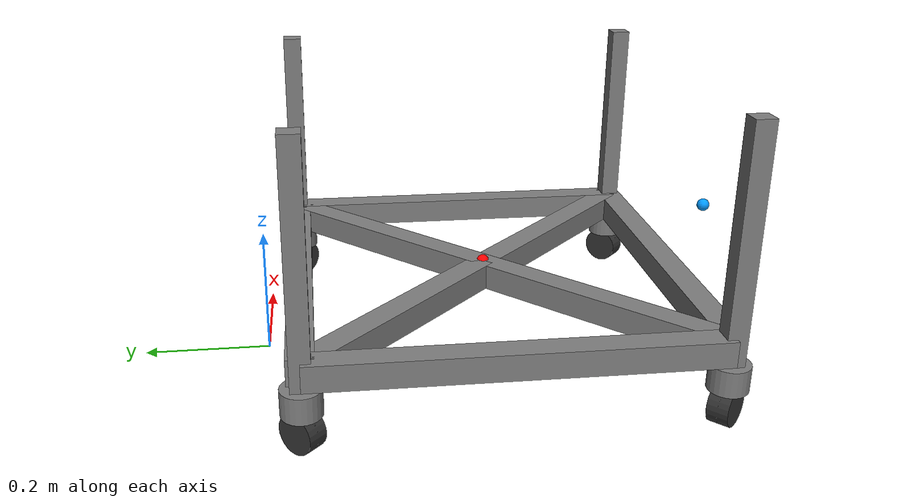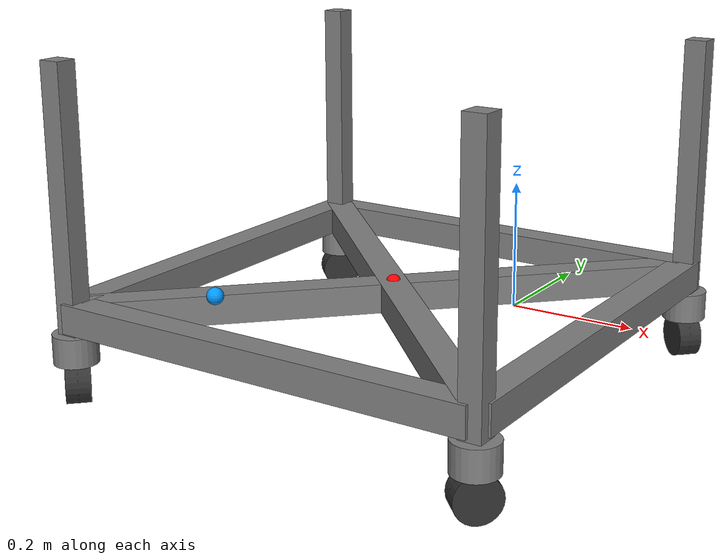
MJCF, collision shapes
<mujoco model="chassis">
    <compiler angle="radian" meshdir="meshes/"/>

    <default>
        <joint damping="0.1" armature="0.01"/>
        <geom friction="1.2 0.005 0.0001" condim="3"/>

        <default class="rail_ext">
            <joint damping="100.0" armature="0.1"
                range="0.02 0.25"
                solreflimit="0.01 1"
                solimplimit="0.95 0.99 0.001"
            />
        </default>

        <default class="wheel_ext">
            <joint damping="0.05" armature="0.01"/>
        </default>
    </default>

    <asset>
        <mesh name="base_link" file="base_link.stl"/>
        <mesh name="LF_rail_link" file="LF_rail_link.stl"/>
        <mesh name="LF_yaw_link" file="LF_yaw_link.stl"/>
        <mesh name="LF_wheel_link" file="LF_wheel_link.stl"/>
        <mesh name="LR_rail_link" file="LR_rail_link.stl"/>
        <mesh name="LR_yaw_link" file="LR_yaw_link.stl"/>
        <mesh name="LR_wheel_link" file="LR_wheel_link.stl"/>
        <mesh name="RF_rail_link" file="RF_rail_link.stl"/>
        <mesh name="RF_yaw_link" file="RF_yaw_link.stl"/>
        <mesh name="RF_wheel_link" file="RF_wheel_link.stl"/>
        <mesh name="RR_rail_link" file="RR_rail_link.stl"/>
        <mesh name="RR_yaw_link" file="RR_yaw_link.stl"/>
        <mesh name="RR_wheel_link" file="RR_wheel_link.stl"/>
    </asset>

    <worldbody>
        <body name="base_link" pos="0 0 0.12">
            <freejoint name="floating_base"/>
            <site name="imu_site" pos="0.0012 -0.3534 0.017" size="0.01" rgba="1 0 0 1"/>

            <body name="front_rgb_camera_link" pos="0 -0.72 0.10">
                <geom type="sphere" size="0.01" rgba="0 0.6 1 0.35" group="3"/>
                <camera name="front_rgb" pos="0 0 0" xyaxes="1 0 0 0 0 1" fovy="70" resolution="640 480"/>
            </body>
            <inertial pos="0.001206 -0.353411 0.016987" mass="2.804" diaginertia="0.015653 0.013748 0.027267"/>

            <geom type="mesh" rgba="0.0 0.0 0.9 1" mesh="base_link" contype="0" conaffinity="0" group="1"/>

            <geom type="box" size="0.02 0.3 0.02" pos="0.3 -0.354 0" group="3" contype="1" conaffinity="1"/>
            <geom type="box" size="0.02 0.3 0.02" pos="-0.3 -0.354 0" group="3" contype="1" conaffinity="1"/>
            <geom type="box" size="0.3 0.02 0.02" pos="0 -0.654 0" group="3" contype="1" conaffinity="1"/>
            <geom type="box" size="0.3 0.02 0.02" pos="0 -0.054 0" group="3" contype="1" conaffinity="1"/>
            <geom type="box" size="0.42 0.02 0.02" pos="0 -0.354 0" quat="0.9239 0 0 0.3827" group="3" contype="1" conaffinity="1"/>
            <geom type="box" size="0.42 0.02 0.02" pos="0 -0.354 0" quat="0.9239 0 0 -0.3827" group="3" contype="1" conaffinity="1"/>

            <body name="LF_rail_link" pos="0.30193 -0.654 0.33384" quat="0.707105 0 0 -0.707108">
                <joint name="LF_rail_joint" class="rail_ext" type="slide" axis="0 0 -1" range="0 0.25"/>
                <geom type="mesh" rgba="0.65 0.62 0.59 1" mesh="LF_rail_link" contype="0" conaffinity="0" group="1"/>
                <geom type="box" size="0.015 0.015 0.18" pos="0 0 -0.18" group="3" contype="1" conaffinity="1"/>

                <body name="LF_yaw_link" pos="0 0 -0.3778">
                    <joint name="LF_yaw_joint" type="hinge" axis="0 0 1" limited="false"/>
                    <geom type="mesh" mesh="LF_yaw_link" contype="0" conaffinity="0" group="1"/>
                    <geom type="cylinder" size="0.03 0.02" pos="0 0 0" group="3" contype="1" conaffinity="1"/>

                    <body name="LF_wheel_link" pos="0 0 -0.0465" quat="0.65328 0.653282 -0.270599 -0.270598">
                        <joint name="LF_wheel_joint" class="wheel_ext" type="hinge" axis="0 0 -1" limited="false"/>
                        <geom type="cylinder" size="0.03 0.016" rgba="0.2 0.2 0.2 1" group="1" contype="0" conaffinity="0"/>
                        <geom type="ellipsoid" size="0.03 0.03 0.016" group="3" contype="1" conaffinity="1"
                            condim="3"
                            friction="1.0 0.001 0.0001"
                            solref="0.05 1"
                            solimp="0.001 0.99 0.01"
                        />
                    </body>
                </body>
            </body>

            <body name="RF_rail_link" pos="-0.29807 -0.654 0.33384" quat="0.707105 0 0 -0.707108">
                <joint name="RF_rail_joint" class="rail_ext" type="slide" axis="0 0 -1" range="0 0.25"/>
                <geom type="mesh" mesh="RF_rail_link" contype="0" conaffinity="0" group="1"/>
                <geom type="box" size="0.015 0.015 0.18" pos="0 0 -0.18" group="3" contype="1" conaffinity="1"/>

                <body name="RF_yaw_link" pos="0 0 -0.3778">
                    <joint name="RF_yaw_joint" type="hinge" axis="0 0 1" limited="false"/>
                    <geom type="mesh" mesh="RF_yaw_link" contype="0" conaffinity="0" group="1"/>
                    <geom type="cylinder" size="0.03 0.02" pos="0 0 0" group="3" contype="1" conaffinity="1"/>

                    <body name="RF_wheel_link" pos="0 0 -0.0465" quat="0.270596 0.270597 -0.653283 -0.653281">
                        <joint name="RF_wheel_joint" class="wheel_ext" type="hinge" axis="0 0 -1" limited="false"/>
                        <geom type="cylinder" size="0.03 0.016" rgba="0.2 0.2 0.2 1" group="1" contype="0" conaffinity="0"/>
                        <geom type="ellipsoid" size="0.03 0.03 0.016" group="3" contype="1" conaffinity="1"
                            condim="3"
                            friction="1.0 0.001 0.0001"
                            solref="0.05 1"
                            solimp="0.001 0.99 0.01"
                        />
                    </body>
                </body>
            </body>

            <body name="LR_rail_link" pos="0.30193 -0.054 0.33384" quat="0.707105 0 0 -0.707108">
                <joint name="LR_rail_joint" class="rail_ext" type="slide" axis="0 0 -1" range="0 0.25"/>
                <geom type="mesh" mesh="LR_rail_link" contype="0" conaffinity="0" group="1"/>
                <geom type="box" size="0.015 0.015 0.18" pos="0 0 -0.18" group="3" contype="1" conaffinity="1"/>

                <body name="LR_yaw_link" pos="0 0 -0.3778">
                    <joint name="LR_yaw_joint" type="hinge" axis="0 0 1" limited="false"/>
                    <geom type="mesh" mesh="LR_yaw_link" contype="0" conaffinity="0" group="1"/>
                    <geom type="cylinder" size="0.03 0.02" pos="0 0 0" group="3" contype="1" conaffinity="1"/>

                    <body name="LR_wheel_link" pos="0 0 -0.0465" quat="0.65328 0.653282 0.270599 0.270598">
                        <joint name="LR_wheel_joint" class="wheel_ext" type="hinge" axis="0 0 -1" limited="false"/>
                        <geom type="cylinder" size="0.03 0.016" rgba="0.2 0.2 0.2 1" group="1" contype="0" conaffinity="0"/>
                        <geom type="ellipsoid" size="0.03 0.03 0.016" group="3" contype="1" conaffinity="1"
                            condim="3"
                            friction="1.0 0.001 0.0001"
                            solref="0.05 1"
                            solimp="0.001 0.99 0.01"
                        />
                    </body>
                </body>
            </body>

            <body name="RR_rail_link" pos="-0.29807 -0.054 0.33384" quat="0.707105 0 0 -0.707108">
                <joint name="RR_rail_joint" class="rail_ext" type="slide" axis="0 0 -1" range="0 0.25"/>
                <geom type="mesh" mesh="RR_rail_link" contype="0" conaffinity="0" group="1"/>
                <geom type="box" size="0.015 0.015 0.18" pos="0 0 -0.18" group="3" contype="1" conaffinity="1"/>

                <body name="RR_yaw_link" pos="0 0 -0.3778">
                    <joint name="RR_yaw_joint" type="hinge" axis="0 0 1" limited="false"/>
                    <geom type="mesh" mesh="RR_yaw_link" contype="0" conaffinity="0" group="1"/>
                    <geom type="cylinder" size="0.03 0.02" pos="0 0 0" group="3" contype="1" conaffinity="1"/>

                    <body name="RR_wheel_link" pos="0 0 -0.0465" quat="0.270596 0.270597 0.653283 0.653281">
                        <joint name="RR_wheel_joint" class="wheel_ext" type="hinge" axis="0 0 -1" limited="false"/>
                        <geom type="cylinder" size="0.03 0.016" rgba="0.2 0.2 0.2 1" group="1" contype="0" conaffinity="0"/>
                        <geom type="ellipsoid" size="0.03 0.03 0.016" group="3" contype="1" conaffinity="1"
                            condim="3"
                            friction="1.0 0.001 0.0001"
                            solref="0.05 1"
                            solimp="0.001 0.99 0.01"
                        />
                    </body>
                </body>
            </body>

        </body>
    </worldbody>

    <contact>
        <exclude body1="base_link" body2="LF_rail_link"/>
        <exclude body1="base_link" body2="RF_rail_link"/>
        <exclude body1="base_link" body2="LR_rail_link"/>
        <exclude body1="base_link" body2="RR_rail_link"/>

        <exclude body1="LF_rail_link" body2="LF_yaw_link"/>
        <exclude body1="RF_rail_link" body2="RF_yaw_link"/>
        <exclude body1="LR_rail_link" body2="LR_yaw_link"/>
        <exclude body1="RR_rail_link" body2="RR_yaw_link"/>

        <exclude body1="LF_yaw_link" body2="LF_wheel_link"/>
        <exclude body1="RF_yaw_link" body2="RF_wheel_link"/>
        <exclude body1="LR_yaw_link" body2="LR_wheel_link"/>
        <exclude body1="RR_yaw_link" body2="RR_wheel_link"/>
    </contact>

    <actuator>
        <position name="LF_steer" joint="LF_yaw_joint" kp="600" forcerange="-2.0 2.0"/>
        <position name="RF_steer" joint="RF_yaw_joint" kp="600" forcerange="-2.0 2.0"/>
        <position name="LR_steer" joint="LR_yaw_joint" kp="600" forcerange="-2.0 2.0"/>
        <position name="RR_steer" joint="RR_yaw_joint" kp="600" forcerange="-2.0 2.0"/>

        <velocity name="LF_drive" joint="LF_wheel_joint" kv="10" forcerange="-3.0 3.0" ctrlrange="-50 50"/>
        <velocity name="RF_drive" joint="RF_wheel_joint" kv="10" forcerange="-3.0 3.0" ctrlrange="-50 50"/>
        <velocity name="LR_drive" joint="LR_wheel_joint" kv="10" forcerange="-3.0 3.0" ctrlrange="-50 50"/>
        <velocity name="RR_drive" joint="RR_wheel_joint" kv="10" forcerange="-3.0 3.0" ctrlrange="-50 50"/>

        <position name="LF_rail" joint="LF_rail_joint" kp="500" forcerange="-2000 2000" ctrlrange="0 0.25"/>
        <position name="RF_rail" joint="RF_rail_joint" kp="500" forcerange="-2000 2000" ctrlrange="0 0.25"/>
        <position name="LR_rail" joint="LR_rail_joint" kp="500" forcerange="-2000 2000" ctrlrange="0 0.25"/>
        <position name="RR_rail" joint="RR_rail_joint" kp="500" forcerange="-2000 2000" ctrlrange="0 0.25"/>
    </actuator>

    <sensor>
        <accelerometer name="imu_acc" site="imu_site"/>
        <gyro name="imu_gyro" site="imu_site"/>

        <jointpos name="LF_steer_pos" joint="LF_yaw_joint"/>
        <jointpos name="RF_steer_pos" joint="RF_yaw_joint"/>
        <jointpos name="LR_steer_pos" joint="LR_yaw_joint"/>
        <jointpos name="RR_steer_pos" joint="RR_yaw_joint"/>

        <jointvel name="LF_drive_vel" joint="LF_wheel_joint"/>
        <jointvel name="RF_drive_vel" joint="RF_wheel_joint"/>
        <jointvel name="LR_drive_vel" joint="LR_wheel_joint"/>
        <jointvel name="RR_drive_vel" joint="RR_wheel_joint"/>

        <jointactuatorfrc name="LF_s_t" joint="LF_yaw_joint"/>
        <jointactuatorfrc name="RF_s_t" joint="RF_yaw_joint"/>
        <jointactuatorfrc name="LR_s_t" joint="LR_yaw_joint"/>
        <jointactuatorfrc name="RR_s_t" joint="RR_yaw_joint"/>
        <jointactuatorfrc name="LF_d_t" joint="LF_wheel_joint"/>
        <jointactuatorfrc name="RF_d_t" joint="RF_wheel_joint"/>
        <jointactuatorfrc name="LR_d_t" joint="LR_wheel_joint"/>
        <jointactuatorfrc name="RR_d_t" joint="RR_wheel_joint"/>
    </sensor>
</mujoco>
